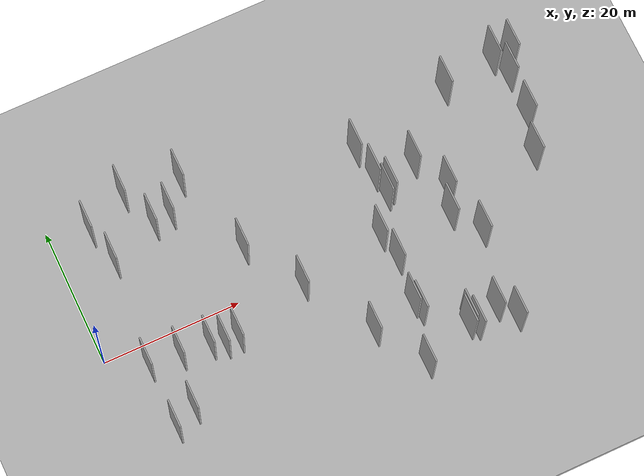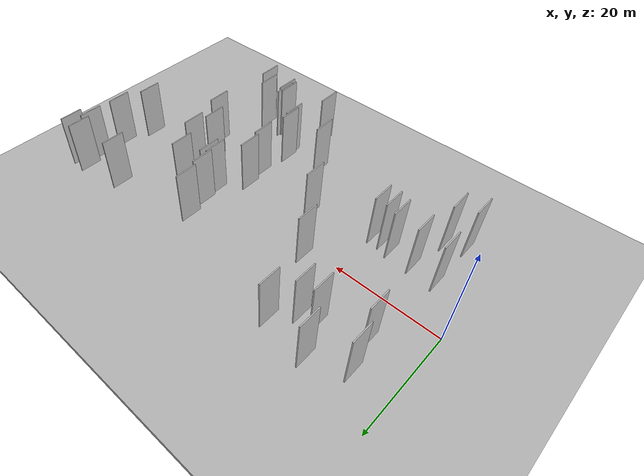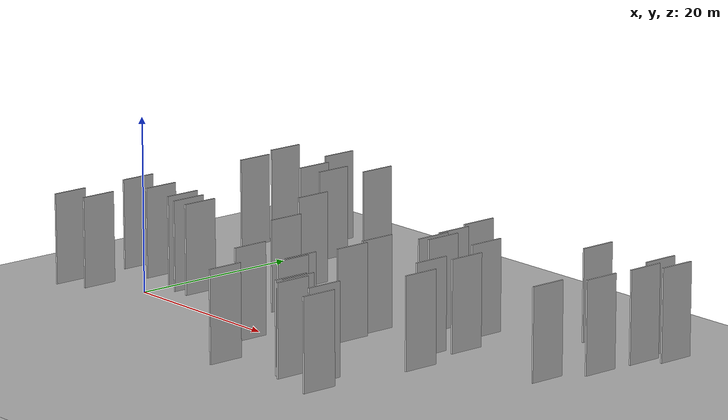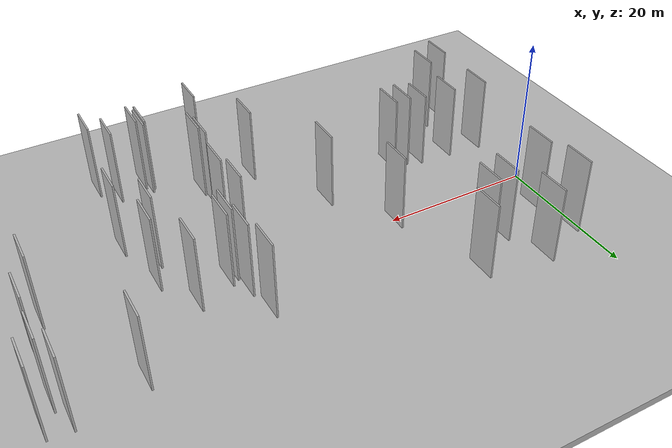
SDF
<?xml version="1.0" encoding="utf-8"?>

<sdf version="1.6">

   <world name="default">

      <gui fullscreen="0">

         <camera name="user_camera">

            <pose>-15 0 4.57585 0 0 0</pose>

            <view_controller>orbit</view_controller>

         </camera>

      </gui>

      <scene>

         <sky>

           <clouds>

             <speed>12</speed>

           </clouds>

         </sky>

         <ambient>0.4 0.4 0.4 1</ambient>

         <background>0.7 0.7 0.7 1</background>

         <shadows>1</shadows>

      </scene>

      <gravity>0 0 -9.8066</gravity>

      <magnetic_field>6e-06 2.3e-05 -4.2e-05</magnetic_field>

      <physics default="0" name="default_physics" type="ode">

         <ode>

            <solver>

               <type>quick</type>

               <iters>10</iters>

               <sor>1.0</sor>

               <use_dynamic_moi_rescaling>0</use_dynamic_moi_rescaling>

            </solver>

            <constraints>

               <cfm>0</cfm>

               <erp>0.2</erp>

               <contact_max_correcting_vel>100</contact_max_correcting_vel>

               <contact_surface_layer>0.001</contact_surface_layer>

            </constraints>

         </ode>

         <max_step_size>0.004</max_step_size>

         <real_time_factor>1</real_time_factor>

         <real_time_update_rate>250</real_time_update_rate>

      </physics>

      <light name="sun" type="directional">

         <cast_shadows>1</cast_shadows>

         <pose>0 0 10 0 0 0</pose>

         <diffuse>0.8 0.8 0.8 1</diffuse>

         <specular>0.2 0.2 0.2 1</specular>

         <attenuation>

            <range>1000</range>

            <constant>0.9</constant>

            <linear>0.01</linear>

            <quadratic>0.001</quadratic>

         </attenuation>

         <direction>-0.5 0.1 -0.9</direction>

      </light>

      <include>

         <name>ground_plane_1</name>

         <uri>model://HANNAS_ground_plane</uri>

         <pose>0 0 0  0 0 0</pose>

      </include>

      <include>

         <name>ground_plane_2</name>

         <uri>model://HANNAS_ground_plane</uri>

         <pose>100 0 0  0 0 0</pose>

      </include>

      <model name="HANNAS_wall_1">

         <static>1</static>

         <pose frame="">28.2181 -2.9749 5.0 0.000000 0.000000 1.570796</pose>

         <link name="link">

            <pose frame="">0 0 5.00 0 0 0</pose>

            <collision name="collision">

               <geometry>

                  <box>

                     <size>4.00 0.2 10.00</size>

                  </box>

               </geometry>

               <max_contacts>10</max_contacts>

               <surface>

                  <contact>

                     <ode/>

                  </contact>

                  <bounce/>

                  <friction>

                     <torsional>

                        <ode/>

                     </torsional>

                     <ode/>

                  </friction>

               </surface>

            </collision>

            <visual name="visual">

               <cast_shadows>0</cast_shadows>

               <geometry>

                  <box>

                     <size>4.00 0.2 10.00</size>

                  </box>

               </geometry>

               <material>

                  <script>

                     <uri>model://HANNAS_wall/materials/scripts</uri>

                     <uri>model://HANNAS_wall/materials/textures</uri>

                     <name>vrc/HANNAS_wall</name>

                  </script>

               </material>

            </visual>

            <self_collide>0</self_collide>

            <enable_wind>0</enable_wind>

            <kinematic>0</kinematic>

         </link>

      </model>

      <model name="HANNAS_wall_2">

         <static>1</static>

         <pose frame="">40.6194 -1.0450 5.0 0.000000 0.000000 1.570796</pose>

         <link name="link">

            <pose frame="">0 0 5.00 0 0 0</pose>

            <collision name="collision">

               <geometry>

                  <box>

                     <size>4.00 0.2 10.00</size>

                  </box>

               </geometry>

               <max_contacts>10</max_contacts>

               <surface>

                  <contact>

                     <ode/>

                  </contact>

                  <bounce/>

                  <friction>

                     <torsional>

                        <ode/>

                     </torsional>

                     <ode/>

                  </friction>

               </surface>

            </collision>

            <visual name="visual">

               <cast_shadows>0</cast_shadows>

               <geometry>

                  <box>

                     <size>4.00 0.2 10.00</size>

                  </box>

               </geometry>

               <material>

                  <script>

                     <uri>model://HANNAS_wall/materials/scripts</uri>

                     <uri>model://HANNAS_wall/materials/textures</uri>

                     <name>vrc/HANNAS_wall</name>

                  </script>

               </material>

            </visual>

            <self_collide>0</self_collide>

            <enable_wind>0</enable_wind>

            <kinematic>0</kinematic>

         </link>

      </model>

      <model name="HANNAS_wall_3">

         <static>1</static>

         <pose frame="">16.1880 13.7043 5.0 0.000000 0.000000 1.570796</pose>

         <link name="link">

            <pose frame="">0 0 5.00 0 0 0</pose>

            <collision name="collision">

               <geometry>

                  <box>

                     <size>4.00 0.2 10.00</size>

                  </box>

               </geometry>

               <max_contacts>10</max_contacts>

               <surface>

                  <contact>

                     <ode/>

                  </contact>

                  <bounce/>

                  <friction>

                     <torsional>

                        <ode/>

                     </torsional>

                     <ode/>

                  </friction>

               </surface>

            </collision>

            <visual name="visual">

               <cast_shadows>0</cast_shadows>

               <geometry>

                  <box>

                     <size>4.00 0.2 10.00</size>

                  </box>

               </geometry>

               <material>

                  <script>

                     <uri>model://HANNAS_wall/materials/scripts</uri>

                     <uri>model://HANNAS_wall/materials/textures</uri>

                     <name>vrc/HANNAS_wall</name>

                  </script>

               </material>

            </visual>

            <self_collide>0</self_collide>

            <enable_wind>0</enable_wind>

            <kinematic>0</kinematic>

         </link>

      </model>

      <model name="HANNAS_wall_4">

         <static>1</static>

         <pose frame="">41.2833 -5.0093 5.0 0.000000 0.000000 1.570796</pose>

         <link name="link">

            <pose frame="">0 0 5.00 0 0 0</pose>

            <collision name="collision">

               <geometry>

                  <box>

                     <size>4.00 0.2 10.00</size>

                  </box>

               </geometry>

               <max_contacts>10</max_contacts>

               <surface>

                  <contact>

                     <ode/>

                  </contact>

                  <bounce/>

                  <friction>

                     <torsional>

                        <ode/>

                     </torsional>

                     <ode/>

                  </friction>

               </surface>

            </collision>

            <visual name="visual">

               <cast_shadows>0</cast_shadows>

               <geometry>

                  <box>

                     <size>4.00 0.2 10.00</size>

                  </box>

               </geometry>

               <material>

                  <script>

                     <uri>model://HANNAS_wall/materials/scripts</uri>

                     <uri>model://HANNAS_wall/materials/textures</uri>

                     <name>vrc/HANNAS_wall</name>

                  </script>

               </material>

            </visual>

            <self_collide>0</self_collide>

            <enable_wind>0</enable_wind>

            <kinematic>0</kinematic>

         </link>

      </model>

      <model name="HANNAS_wall_5">

         <static>1</static>

         <pose frame="">9.4145 -4.8762 5.0 0.000000 0.000000 1.570796</pose>

         <link name="link">

            <pose frame="">0 0 5.00 0 0 0</pose>

            <collision name="collision">

               <geometry>

                  <box>

                     <size>4.00 0.2 10.00</size>

                  </box>

               </geometry>

               <max_contacts>10</max_contacts>

               <surface>

                  <contact>

                     <ode/>

                  </contact>

                  <bounce/>

                  <friction>

                     <torsional>

                        <ode/>

                     </torsional>

                     <ode/>

                  </friction>

               </surface>

            </collision>

            <visual name="visual">

               <cast_shadows>0</cast_shadows>

               <geometry>

                  <box>

                     <size>4.00 0.2 10.00</size>

                  </box>

               </geometry>

               <material>

                  <script>

                     <uri>model://HANNAS_wall/materials/scripts</uri>

                     <uri>model://HANNAS_wall/materials/textures</uri>

                     <name>vrc/HANNAS_wall</name>

                  </script>

               </material>

            </visual>

            <self_collide>0</self_collide>

            <enable_wind>0</enable_wind>

            <kinematic>0</kinematic>

         </link>

      </model>

      <model name="HANNAS_wall_6">

         <static>1</static>

         <pose frame="">8.0954 -12.2919 5.0 0.000000 0.000000 1.570796</pose>

         <link name="link">

            <pose frame="">0 0 5.00 0 0 0</pose>

            <collision name="collision">

               <geometry>

                  <box>

                     <size>4.00 0.2 10.00</size>

                  </box>

               </geometry>

               <max_contacts>10</max_contacts>

               <surface>

                  <contact>

                     <ode/>

                  </contact>

                  <bounce/>

                  <friction>

                     <torsional>

                        <ode/>

                     </torsional>

                     <ode/>

                  </friction>

               </surface>

            </collision>

            <visual name="visual">

               <cast_shadows>0</cast_shadows>

               <geometry>

                  <box>

                     <size>4.00 0.2 10.00</size>

                  </box>

               </geometry>

               <material>

                  <script>

                     <uri>model://HANNAS_wall/materials/scripts</uri>

                     <uri>model://HANNAS_wall/materials/textures</uri>

                     <name>vrc/HANNAS_wall</name>

                  </script>

               </material>

            </visual>

            <self_collide>0</self_collide>

            <enable_wind>0</enable_wind>

            <kinematic>0</kinematic>

         </link>

      </model>

      <model name="HANNAS_wall_7">

         <static>1</static>

         <pose frame="">66.4452 12.3085 5.0 0.000000 0.000000 1.570796</pose>

         <link name="link">

            <pose frame="">0 0 5.00 0 0 0</pose>

            <collision name="collision">

               <geometry>

                  <box>

                     <size>4.00 0.2 10.00</size>

                  </box>

               </geometry>

               <max_contacts>10</max_contacts>

               <surface>

                  <contact>

                     <ode/>

                  </contact>

                  <bounce/>

                  <friction>

                     <torsional>

                        <ode/>

                     </torsional>

                     <ode/>

                  </friction>

               </surface>

            </collision>

            <visual name="visual">

               <cast_shadows>0</cast_shadows>

               <geometry>

                  <box>

                     <size>4.00 0.2 10.00</size>

                  </box>

               </geometry>

               <material>

                  <script>

                     <uri>model://HANNAS_wall/materials/scripts</uri>

                     <uri>model://HANNAS_wall/materials/textures</uri>

                     <name>vrc/HANNAS_wall</name>

                  </script>

               </material>

            </visual>

            <self_collide>0</self_collide>

            <enable_wind>0</enable_wind>

            <kinematic>0</kinematic>

         </link>

      </model>

      <model name="HANNAS_wall_8">

         <static>1</static>

         <pose frame="">11.3391 18.6466 5.0 0.000000 0.000000 1.570796</pose>

         <link name="link">

            <pose frame="">0 0 5.00 0 0 0</pose>

            <collision name="collision">

               <geometry>

                  <box>

                     <size>4.00 0.2 10.00</size>

                  </box>

               </geometry>

               <max_contacts>10</max_contacts>

               <surface>

                  <contact>

                     <ode/>

                  </contact>

                  <bounce/>

                  <friction>

                     <torsional>

                        <ode/>

                     </torsional>

                     <ode/>

                  </friction>

               </surface>

            </collision>

            <visual name="visual">

               <cast_shadows>0</cast_shadows>

               <geometry>

                  <box>

                     <size>4.00 0.2 10.00</size>

                  </box>

               </geometry>

               <material>

                  <script>

                     <uri>model://HANNAS_wall/materials/scripts</uri>

                     <uri>model://HANNAS_wall/materials/textures</uri>

                     <name>vrc/HANNAS_wall</name>

                  </script>

               </material>

            </visual>

            <self_collide>0</self_collide>

            <enable_wind>0</enable_wind>

            <kinematic>0</kinematic>

         </link>

      </model>

      <model name="HANNAS_wall_9">

         <static>1</static>

         <pose frame="">43.4012 7.0641 5.0 0.000000 0.000000 1.570796</pose>

         <link name="link">

            <pose frame="">0 0 5.00 0 0 0</pose>

            <collision name="collision">

               <geometry>

                  <box>

                     <size>4.00 0.2 10.00</size>

                  </box>

               </geometry>

               <max_contacts>10</max_contacts>

               <surface>

                  <contact>

                     <ode/>

                  </contact>

                  <bounce/>

                  <friction>

                     <torsional>

                        <ode/>

                     </torsional>

                     <ode/>

                  </friction>

               </surface>

            </collision>

            <visual name="visual">

               <cast_shadows>0</cast_shadows>

               <geometry>

                  <box>

                     <size>4.00 0.2 10.00</size>

                  </box>

               </geometry>

               <material>

                  <script>

                     <uri>model://HANNAS_wall/materials/scripts</uri>

                     <uri>model://HANNAS_wall/materials/textures</uri>

                     <name>vrc/HANNAS_wall</name>

                  </script>

               </material>

            </visual>

            <self_collide>0</self_collide>

            <enable_wind>0</enable_wind>

            <kinematic>0</kinematic>

         </link>

      </model>

      <model name="HANNAS_wall_10">

         <static>1</static>

         <pose frame="">19.2613 17.3934 5.0 0.000000 0.000000 1.570796</pose>

         <link name="link">

            <pose frame="">0 0 5.00 0 0 0</pose>

            <collision name="collision">

               <geometry>

                  <box>

                     <size>4.00 0.2 10.00</size>

                  </box>

               </geometry>

               <max_contacts>10</max_contacts>

               <surface>

                  <contact>

                     <ode/>

                  </contact>

                  <bounce/>

                  <friction>

                     <torsional>

                        <ode/>

                     </torsional>

                     <ode/>

                  </friction>

               </surface>

            </collision>

            <visual name="visual">

               <cast_shadows>0</cast_shadows>

               <geometry>

                  <box>

                     <size>4.00 0.2 10.00</size>

                  </box>

               </geometry>

               <material>

                  <script>

                     <uri>model://HANNAS_wall/materials/scripts</uri>

                     <uri>model://HANNAS_wall/materials/textures</uri>

                     <name>vrc/HANNAS_wall</name>

                  </script>

               </material>

            </visual>

            <self_collide>0</self_collide>

            <enable_wind>0</enable_wind>

            <kinematic>0</kinematic>

         </link>

      </model>

      <model name="HANNAS_wall_11">

         <static>1</static>

         <pose frame="">38.7203 -19.6491 5.0 0.000000 0.000000 1.570796</pose>

         <link name="link">

            <pose frame="">0 0 5.00 0 0 0</pose>

            <collision name="collision">

               <geometry>

                  <box>

                     <size>4.00 0.2 10.00</size>

                  </box>

               </geometry>

               <max_contacts>10</max_contacts>

               <surface>

                  <contact>

                     <ode/>

                  </contact>

                  <bounce/>

                  <friction>

                     <torsional>

                        <ode/>

                     </torsional>

                     <ode/>

                  </friction>

               </surface>

            </collision>

            <visual name="visual">

               <cast_shadows>0</cast_shadows>

               <geometry>

                  <box>

                     <size>4.00 0.2 10.00</size>

                  </box>

               </geometry>

               <material>

                  <script>

                     <uri>model://HANNAS_wall/materials/scripts</uri>

                     <uri>model://HANNAS_wall/materials/textures</uri>

                     <name>vrc/HANNAS_wall</name>

                  </script>

               </material>

            </visual>

            <self_collide>0</self_collide>

            <enable_wind>0</enable_wind>

            <kinematic>0</kinematic>

         </link>

      </model>

      <model name="HANNAS_wall_12">

         <static>1</static>

         <pose frame="">68.0209 15.2066 5.0 0.000000 0.000000 1.570796</pose>

         <link name="link">

            <pose frame="">0 0 5.00 0 0 0</pose>

            <collision name="collision">

               <geometry>

                  <box>

                     <size>4.00 0.2 10.00</size>

                  </box>

               </geometry>

               <max_contacts>10</max_contacts>

               <surface>

                  <contact>

                     <ode/>

                  </contact>

                  <bounce/>

                  <friction>

                     <torsional>

                        <ode/>

                     </torsional>

                     <ode/>

                  </friction>

               </surface>

            </collision>

            <visual name="visual">

               <cast_shadows>0</cast_shadows>

               <geometry>

                  <box>

                     <size>4.00 0.2 10.00</size>

                  </box>

               </geometry>

               <material>

                  <script>

                     <uri>model://HANNAS_wall/materials/scripts</uri>

                     <uri>model://HANNAS_wall/materials/textures</uri>

                     <name>vrc/HANNAS_wall</name>

                  </script>

               </material>

            </visual>

            <self_collide>0</self_collide>

            <enable_wind>0</enable_wind>

            <kinematic>0</kinematic>

         </link>

      </model>

      <model name="HANNAS_wall_13">

         <static>1</static>

         <pose frame="">46.3713 -16.4307 5.0 0.000000 0.000000 1.570796</pose>

         <link name="link">

            <pose frame="">0 0 5.00 0 0 0</pose>

            <collision name="collision">

               <geometry>

                  <box>

                     <size>4.00 0.2 10.00</size>

                  </box>

               </geometry>

               <max_contacts>10</max_contacts>

               <surface>

                  <contact>

                     <ode/>

                  </contact>

                  <bounce/>

                  <friction>

                     <torsional>

                        <ode/>

                     </torsional>

                     <ode/>

                  </friction>

               </surface>

            </collision>

            <visual name="visual">

               <cast_shadows>0</cast_shadows>

               <geometry>

                  <box>

                     <size>4.00 0.2 10.00</size>

                  </box>

               </geometry>

               <material>

                  <script>

                     <uri>model://HANNAS_wall/materials/scripts</uri>

                     <uri>model://HANNAS_wall/materials/textures</uri>

                     <name>vrc/HANNAS_wall</name>

                  </script>

               </material>

            </visual>

            <self_collide>0</self_collide>

            <enable_wind>0</enable_wind>

            <kinematic>0</kinematic>

         </link>

      </model>

      <model name="HANNAS_wall_14">

         <static>1</static>

         <pose frame="">46.0093 -17.0726 5.0 0.000000 0.000000 1.570796</pose>

         <link name="link">

            <pose frame="">0 0 5.00 0 0 0</pose>

            <collision name="collision">

               <geometry>

                  <box>

                     <size>4.00 0.2 10.00</size>

                  </box>

               </geometry>

               <max_contacts>10</max_contacts>

               <surface>

                  <contact>

                     <ode/>

                  </contact>

                  <bounce/>

                  <friction>

                     <torsional>

                        <ode/>

                     </torsional>

                     <ode/>

                  </friction>

               </surface>

            </collision>

            <visual name="visual">

               <cast_shadows>0</cast_shadows>

               <geometry>

                  <box>

                     <size>4.00 0.2 10.00</size>

                  </box>

               </geometry>

               <material>

                  <script>

                     <uri>model://HANNAS_wall/materials/scripts</uri>

                     <uri>model://HANNAS_wall/materials/textures</uri>

                     <name>vrc/HANNAS_wall</name>

                  </script>

               </material>

            </visual>

            <self_collide>0</self_collide>

            <enable_wind>0</enable_wind>

            <kinematic>0</kinematic>

         </link>

      </model>

      <model name="HANNAS_wall_15">

         <static>1</static>

         <pose frame="">23.0799 5.0115 5.0 0.000000 0.000000 1.570796</pose>

         <link name="link">

            <pose frame="">0 0 5.00 0 0 0</pose>

            <collision name="collision">

               <geometry>

                  <box>

                     <size>4.00 0.2 10.00</size>

                  </box>

               </geometry>

               <max_contacts>10</max_contacts>

               <surface>

                  <contact>

                     <ode/>

                  </contact>

                  <bounce/>

                  <friction>

                     <torsional>

                        <ode/>

                     </torsional>

                     <ode/>

                  </friction>

               </surface>

            </collision>

            <visual name="visual">

               <cast_shadows>0</cast_shadows>

               <geometry>

                  <box>

                     <size>4.00 0.2 10.00</size>

                  </box>

               </geometry>

               <material>

                  <script>

                     <uri>model://HANNAS_wall/materials/scripts</uri>

                     <uri>model://HANNAS_wall/materials/textures</uri>

                     <name>vrc/HANNAS_wall</name>

                  </script>

               </material>

            </visual>

            <self_collide>0</self_collide>

            <enable_wind>0</enable_wind>

            <kinematic>0</kinematic>

         </link>

      </model>

      <model name="HANNAS_wall_16">

         <static>1</static>

         <pose frame="">4.9287 -13.6549 5.0 0.000000 0.000000 1.570796</pose>

         <link name="link">

            <pose frame="">0 0 5.00 0 0 0</pose>

            <collision name="collision">

               <geometry>

                  <box>

                     <size>4.00 0.2 10.00</size>

                  </box>

               </geometry>

               <max_contacts>10</max_contacts>

               <surface>

                  <contact>

                     <ode/>

                  </contact>

                  <bounce/>

                  <friction>

                     <torsional>

                        <ode/>

                     </torsional>

                     <ode/>

                  </friction>

               </surface>

            </collision>

            <visual name="visual">

               <cast_shadows>0</cast_shadows>

               <geometry>

                  <box>

                     <size>4.00 0.2 10.00</size>

                  </box>

               </geometry>

               <material>

                  <script>

                     <uri>model://HANNAS_wall/materials/scripts</uri>

                     <uri>model://HANNAS_wall/materials/textures</uri>

                     <name>vrc/HANNAS_wall</name>

                  </script>

               </material>

            </visual>

            <self_collide>0</self_collide>

            <enable_wind>0</enable_wind>

            <kinematic>0</kinematic>

         </link>

      </model>

      <model name="HANNAS_wall_17">

         <static>1</static>

         <pose frame="">51.8141 1.2907 5.0 0.000000 0.000000 1.570796</pose>

         <link name="link">

            <pose frame="">0 0 5.00 0 0 0</pose>

            <collision name="collision">

               <geometry>

                  <box>

                     <size>4.00 0.2 10.00</size>

                  </box>

               </geometry>

               <max_contacts>10</max_contacts>

               <surface>

                  <contact>

                     <ode/>

                  </contact>

                  <bounce/>

                  <friction>

                     <torsional>

                        <ode/>

                     </torsional>

                     <ode/>

                  </friction>

               </surface>

            </collision>

            <visual name="visual">

               <cast_shadows>0</cast_shadows>

               <geometry>

                  <box>

                     <size>4.00 0.2 10.00</size>

                  </box>

               </geometry>

               <material>

                  <script>

                     <uri>model://HANNAS_wall/materials/scripts</uri>

                     <uri>model://HANNAS_wall/materials/textures</uri>

                     <name>vrc/HANNAS_wall</name>

                  </script>

               </material>

            </visual>

            <self_collide>0</self_collide>

            <enable_wind>0</enable_wind>

            <kinematic>0</kinematic>

         </link>

      </model>

      <model name="HANNAS_wall_18">

         <static>1</static>

         <pose frame="">17.4231 -5.8846 5.0 0.000000 0.000000 1.570796</pose>

         <link name="link">

            <pose frame="">0 0 5.00 0 0 0</pose>

            <collision name="collision">

               <geometry>

                  <box>

                     <size>4.00 0.2 10.00</size>

                  </box>

               </geometry>

               <max_contacts>10</max_contacts>

               <surface>

                  <contact>

                     <ode/>

                  </contact>

                  <bounce/>

                  <friction>

                     <torsional>

                        <ode/>

                     </torsional>

                     <ode/>

                  </friction>

               </surface>

            </collision>

            <visual name="visual">

               <cast_shadows>0</cast_shadows>

               <geometry>

                  <box>

                     <size>4.00 0.2 10.00</size>

                  </box>

               </geometry>

               <material>

                  <script>

                     <uri>model://HANNAS_wall/materials/scripts</uri>

                     <uri>model://HANNAS_wall/materials/textures</uri>

                     <name>vrc/HANNAS_wall</name>

                  </script>

               </material>

            </visual>

            <self_collide>0</self_collide>

            <enable_wind>0</enable_wind>

            <kinematic>0</kinematic>

         </link>

      </model>

      <model name="HANNAS_wall_19">

         <static>1</static>

         <pose frame="">13.6019 -5.1971 5.0 0.000000 0.000000 1.570796</pose>

         <link name="link">

            <pose frame="">0 0 5.00 0 0 0</pose>

            <collision name="collision">

               <geometry>

                  <box>

                     <size>4.00 0.2 10.00</size>

                  </box>

               </geometry>

               <max_contacts>10</max_contacts>

               <surface>

                  <contact>

                     <ode/>

                  </contact>

                  <bounce/>

                  <friction>

                     <torsional>

                        <ode/>

                     </torsional>

                     <ode/>

                  </friction>

               </surface>

            </collision>

            <visual name="visual">

               <cast_shadows>0</cast_shadows>

               <geometry>

                  <box>

                     <size>4.00 0.2 10.00</size>

                  </box>

               </geometry>

               <material>

                  <script>

                     <uri>model://HANNAS_wall/materials/scripts</uri>

                     <uri>model://HANNAS_wall/materials/textures</uri>

                     <name>vrc/HANNAS_wall</name>

                  </script>

               </material>

            </visual>

            <self_collide>0</self_collide>

            <enable_wind>0</enable_wind>

            <kinematic>0</kinematic>

         </link>

      </model>

      <model name="HANNAS_wall_20">

         <static>1</static>

         <pose frame="">52.3853 -18.8001 5.0 0.000000 0.000000 1.570796</pose>

         <link name="link">

            <pose frame="">0 0 5.00 0 0 0</pose>

            <collision name="collision">

               <geometry>

                  <box>

                     <size>4.00 0.2 10.00</size>

                  </box>

               </geometry>

               <max_contacts>10</max_contacts>

               <surface>

                  <contact>

                     <ode/>

                  </contact>

                  <bounce/>

                  <friction>

                     <torsional>

                        <ode/>

                     </torsional>

                     <ode/>

                  </friction>

               </surface>

            </collision>

            <visual name="visual">

               <cast_shadows>0</cast_shadows>

               <geometry>

                  <box>

                     <size>4.00 0.2 10.00</size>

                  </box>

               </geometry>

               <material>

                  <script>

                     <uri>model://HANNAS_wall/materials/scripts</uri>

                     <uri>model://HANNAS_wall/materials/textures</uri>

                     <name>vrc/HANNAS_wall</name>

                  </script>

               </material>

            </visual>

            <self_collide>0</self_collide>

            <enable_wind>0</enable_wind>

            <kinematic>0</kinematic>

         </link>

      </model>

      <model name="HANNAS_wall_21">

         <static>1</static>

         <pose frame="">40.5786 -11.2716 5.0 0.000000 0.000000 1.570796</pose>

         <link name="link">

            <pose frame="">0 0 5.00 0 0 0</pose>

            <collision name="collision">

               <geometry>

                  <box>

                     <size>4.00 0.2 10.00</size>

                  </box>

               </geometry>

               <max_contacts>10</max_contacts>

               <surface>

                  <contact>

                     <ode/>

                  </contact>

                  <bounce/>

                  <friction>

                     <torsional>

                        <ode/>

                     </torsional>

                     <ode/>

                  </friction>

               </surface>

            </collision>

            <visual name="visual">

               <cast_shadows>0</cast_shadows>

               <geometry>

                  <box>

                     <size>4.00 0.2 10.00</size>

                  </box>

               </geometry>

               <material>

                  <script>

                     <uri>model://HANNAS_wall/materials/scripts</uri>

                     <uri>model://HANNAS_wall/materials/textures</uri>

                     <name>vrc/HANNAS_wall</name>

                  </script>

               </material>

            </visual>

            <self_collide>0</self_collide>

            <enable_wind>0</enable_wind>

            <kinematic>0</kinematic>

         </link>

      </model>

      <model name="HANNAS_wall_22">

         <static>1</static>

         <pose frame="">64.5172 0.7226 5.0 0.000000 0.000000 1.570796</pose>

         <link name="link">

            <pose frame="">0 0 5.00 0 0 0</pose>

            <collision name="collision">

               <geometry>

                  <box>

                     <size>4.00 0.2 10.00</size>

                  </box>

               </geometry>

               <max_contacts>10</max_contacts>

               <surface>

                  <contact>

                     <ode/>

                  </contact>

                  <bounce/>

                  <friction>

                     <torsional>

                        <ode/>

                     </torsional>

                     <ode/>

                  </friction>

               </surface>

            </collision>

            <visual name="visual">

               <cast_shadows>0</cast_shadows>

               <geometry>

                  <box>

                     <size>4.00 0.2 10.00</size>

                  </box>

               </geometry>

               <material>

                  <script>

                     <uri>model://HANNAS_wall/materials/scripts</uri>

                     <uri>model://HANNAS_wall/materials/textures</uri>

                     <name>vrc/HANNAS_wall</name>

                  </script>

               </material>

            </visual>

            <self_collide>0</self_collide>

            <enable_wind>0</enable_wind>

            <kinematic>0</kinematic>

         </link>

      </model>

      <model name="HANNAS_wall_23">

         <static>1</static>

         <pose frame="">13.5059 13.2131 5.0 0.000000 0.000000 1.570796</pose>

         <link name="link">

            <pose frame="">0 0 5.00 0 0 0</pose>

            <collision name="collision">

               <geometry>

                  <box>

                     <size>4.00 0.2 10.00</size>

                  </box>

               </geometry>

               <max_contacts>10</max_contacts>

               <surface>

                  <contact>

                     <ode/>

                  </contact>

                  <bounce/>

                  <friction>

                     <torsional>

                        <ode/>

                     </torsional>

                     <ode/>

                  </friction>

               </surface>

            </collision>

            <visual name="visual">

               <cast_shadows>0</cast_shadows>

               <geometry>

                  <box>

                     <size>4.00 0.2 10.00</size>

                  </box>

               </geometry>

               <material>

                  <script>

                     <uri>model://HANNAS_wall/materials/scripts</uri>

                     <uri>model://HANNAS_wall/materials/textures</uri>

                     <name>vrc/HANNAS_wall</name>

                  </script>

               </material>

            </visual>

            <self_collide>0</self_collide>

            <enable_wind>0</enable_wind>

            <kinematic>0</kinematic>

         </link>

      </model>

      <model name="HANNAS_wall_24">

         <static>1</static>

         <pose frame="">53.3478 -6.2530 5.0 0.000000 0.000000 1.570796</pose>

         <link name="link">

            <pose frame="">0 0 5.00 0 0 0</pose>

            <collision name="collision">

               <geometry>

                  <box>

                     <size>4.00 0.2 10.00</size>

                  </box>

               </geometry>

               <max_contacts>10</max_contacts>

               <surface>

                  <contact>

                     <ode/>

                  </contact>

                  <bounce/>

                  <friction>

                     <torsional>

                        <ode/>

                     </torsional>

                     <ode/>

                  </friction>

               </surface>

            </collision>

            <visual name="visual">

               <cast_shadows>0</cast_shadows>

               <geometry>

                  <box>

                     <size>4.00 0.2 10.00</size>

                  </box>

               </geometry>

               <material>

                  <script>

                     <uri>model://HANNAS_wall/materials/scripts</uri>

                     <uri>model://HANNAS_wall/materials/textures</uri>

                     <name>vrc/HANNAS_wall</name>

                  </script>

               </material>

            </visual>

            <self_collide>0</self_collide>

            <enable_wind>0</enable_wind>

            <kinematic>0</kinematic>

         </link>

      </model>

      <model name="HANNAS_wall_25">

         <static>1</static>

         <pose frame="">44.6329 4.4541 5.0 0.000000 0.000000 1.570796</pose>

         <link name="link">

            <pose frame="">0 0 5.00 0 0 0</pose>

            <collision name="collision">

               <geometry>

                  <box>

                     <size>4.00 0.2 10.00</size>

                  </box>

               </geometry>

               <max_contacts>10</max_contacts>

               <surface>

                  <contact>

                     <ode/>

                  </contact>

                  <bounce/>

                  <friction>

                     <torsional>

                        <ode/>

                     </torsional>

                     <ode/>

                  </friction>

               </surface>

            </collision>

            <visual name="visual">

               <cast_shadows>0</cast_shadows>

               <geometry>

                  <box>

                     <size>4.00 0.2 10.00</size>

                  </box>

               </geometry>

               <material>

                  <script>

                     <uri>model://HANNAS_wall/materials/scripts</uri>

                     <uri>model://HANNAS_wall/materials/textures</uri>

                     <name>vrc/HANNAS_wall</name>

                  </script>

               </material>

            </visual>

            <self_collide>0</self_collide>

            <enable_wind>0</enable_wind>

            <kinematic>0</kinematic>

         </link>

      </model>

      <model name="HANNAS_wall_26">

         <static>1</static>

         <pose frame="">43.8026 3.8414 5.0 0.000000 0.000000 1.570796</pose>

         <link name="link">

            <pose frame="">0 0 5.00 0 0 0</pose>

            <collision name="collision">

               <geometry>

                  <box>

                     <size>4.00 0.2 10.00</size>

                  </box>

               </geometry>

               <max_contacts>10</max_contacts>

               <surface>

                  <contact>

                     <ode/>

                  </contact>

                  <bounce/>

                  <friction>

                     <torsional>

                        <ode/>

                     </torsional>

                     <ode/>

                  </friction>

               </surface>

            </collision>

            <visual name="visual">

               <cast_shadows>0</cast_shadows>

               <geometry>

                  <box>

                     <size>4.00 0.2 10.00</size>

                  </box>

               </geometry>

               <material>

                  <script>

                     <uri>model://HANNAS_wall/materials/scripts</uri>

                     <uri>model://HANNAS_wall/materials/textures</uri>

                     <name>vrc/HANNAS_wall</name>

                  </script>

               </material>

            </visual>

            <self_collide>0</self_collide>

            <enable_wind>0</enable_wind>

            <kinematic>0</kinematic>

         </link>

      </model>

      <model name="HANNAS_wall_27">

         <static>1</static>

         <pose frame="">4.9653 -4.5099 5.0 0.000000 0.000000 1.570796</pose>

         <link name="link">

            <pose frame="">0 0 5.00 0 0 0</pose>

            <collision name="collision">

               <geometry>

                  <box>

                     <size>4.00 0.2 10.00</size>

                  </box>

               </geometry>

               <max_contacts>10</max_contacts>

               <surface>

                  <contact>

                     <ode/>

                  </contact>

                  <bounce/>

                  <friction>

                     <torsional>

                        <ode/>

                     </torsional>

                     <ode/>

                  </friction>

               </surface>

            </collision>

            <visual name="visual">

               <cast_shadows>0</cast_shadows>

               <geometry>

                  <box>

                     <size>4.00 0.2 10.00</size>

                  </box>

               </geometry>

               <material>

                  <script>

                     <uri>model://HANNAS_wall/materials/scripts</uri>

                     <uri>model://HANNAS_wall/materials/textures</uri>

                     <name>vrc/HANNAS_wall</name>

                  </script>

               </material>

            </visual>

            <self_collide>0</self_collide>

            <enable_wind>0</enable_wind>

            <kinematic>0</kinematic>

         </link>

      </model>

      <model name="HANNAS_wall_28">

         <static>1</static>

         <pose frame="">66.2391 6.3901 5.0 0.000000 0.000000 1.570796</pose>

         <link name="link">

            <pose frame="">0 0 5.00 0 0 0</pose>

            <collision name="collision">

               <geometry>

                  <box>

                     <size>4.00 0.2 10.00</size>

                  </box>

               </geometry>

               <max_contacts>10</max_contacts>

               <surface>

                  <contact>

                     <ode/>

                  </contact>

                  <bounce/>

                  <friction>

                     <torsional>

                        <ode/>

                     </torsional>

                     <ode/>

                  </friction>

               </surface>

            </collision>

            <visual name="visual">

               <cast_shadows>0</cast_shadows>

               <geometry>

                  <box>

                     <size>4.00 0.2 10.00</size>

                  </box>

               </geometry>

               <material>

                  <script>

                     <uri>model://HANNAS_wall/materials/scripts</uri>

                     <uri>model://HANNAS_wall/materials/textures</uri>

                     <name>vrc/HANNAS_wall</name>

                  </script>

               </material>

            </visual>

            <self_collide>0</self_collide>

            <enable_wind>0</enable_wind>

            <kinematic>0</kinematic>

         </link>

      </model>

      <model name="HANNAS_wall_29">

         <static>1</static>

         <pose frame="">65.3992 15.4369 5.0 0.000000 0.000000 1.570796</pose>

         <link name="link">

            <pose frame="">0 0 5.00 0 0 0</pose>

            <collision name="collision">

               <geometry>

                  <box>

                     <size>4.00 0.2 10.00</size>

                  </box>

               </geometry>

               <max_contacts>10</max_contacts>

               <surface>

                  <contact>

                     <ode/>

                  </contact>

                  <bounce/>

                  <friction>

                     <torsional>

                        <ode/>

                     </torsional>

                     <ode/>

                  </friction>

               </surface>

            </collision>

            <visual name="visual">

               <cast_shadows>0</cast_shadows>

               <geometry>

                  <box>

                     <size>4.00 0.2 10.00</size>

                  </box>

               </geometry>

               <material>

                  <script>

                     <uri>model://HANNAS_wall/materials/scripts</uri>

                     <uri>model://HANNAS_wall/materials/textures</uri>

                     <name>vrc/HANNAS_wall</name>

                  </script>

               </material>

            </visual>

            <self_collide>0</self_collide>

            <enable_wind>0</enable_wind>

            <kinematic>0</kinematic>

         </link>

      </model>

      <model name="HANNAS_wall_30">

         <static>1</static>

         <pose frame="">50.4615 -2.3005 5.0 0.000000 0.000000 1.570796</pose>

         <link name="link">

            <pose frame="">0 0 5.00 0 0 0</pose>

            <collision name="collision">

               <geometry>

                  <box>

                     <size>4.00 0.2 10.00</size>

                  </box>

               </geometry>

               <max_contacts>10</max_contacts>

               <surface>

                  <contact>

                     <ode/>

                  </contact>

                  <bounce/>

                  <friction>

                     <torsional>

                        <ode/>

                     </torsional>

                     <ode/>

                  </friction>

               </surface>

            </collision>

            <visual name="visual">

               <cast_shadows>0</cast_shadows>

               <geometry>

                  <box>

                     <size>4.00 0.2 10.00</size>

                  </box>

               </geometry>

               <material>

                  <script>

                     <uri>model://HANNAS_wall/materials/scripts</uri>

                     <uri>model://HANNAS_wall/materials/textures</uri>

                     <name>vrc/HANNAS_wall</name>

                  </script>

               </material>

            </visual>

            <self_collide>0</self_collide>

            <enable_wind>0</enable_wind>

            <kinematic>0</kinematic>

         </link>

      </model>

      <model name="HANNAS_wall_31">

         <static>1</static>

         <pose frame="">57.5133 14.2103 5.0 0.000000 0.000000 1.570796</pose>

         <link name="link">

            <pose frame="">0 0 5.00 0 0 0</pose>

            <collision name="collision">

               <geometry>

                  <box>

                     <size>4.00 0.2 10.00</size>

                  </box>

               </geometry>

               <max_contacts>10</max_contacts>

               <surface>

                  <contact>

                     <ode/>

                  </contact>

                  <bounce/>

                  <friction>

                     <torsional>

                        <ode/>

                     </torsional>

                     <ode/>

                  </friction>

               </surface>

            </collision>

            <visual name="visual">

               <cast_shadows>0</cast_shadows>

               <geometry>

                  <box>

                     <size>4.00 0.2 10.00</size>

                  </box>

               </geometry>

               <material>

                  <script>

                     <uri>model://HANNAS_wall/materials/scripts</uri>

                     <uri>model://HANNAS_wall/materials/textures</uri>

                     <name>vrc/HANNAS_wall</name>

                  </script>

               </material>

            </visual>

            <self_collide>0</self_collide>

            <enable_wind>0</enable_wind>

            <kinematic>0</kinematic>

         </link>

      </model>

      <model name="HANNAS_wall_32">

         <static>1</static>

         <pose frame="">15.4614 -5.8716 5.0 0.000000 0.000000 1.570796</pose>

         <link name="link">

            <pose frame="">0 0 5.00 0 0 0</pose>

            <collision name="collision">

               <geometry>

                  <box>

                     <size>4.00 0.2 10.00</size>

                  </box>

               </geometry>

               <max_contacts>10</max_contacts>

               <surface>

                  <contact>

                     <ode/>

                  </contact>

                  <bounce/>

                  <friction>

                     <torsional>

                        <ode/>

                     </torsional>

                     <ode/>

                  </friction>

               </surface>

            </collision>

            <visual name="visual">

               <cast_shadows>0</cast_shadows>

               <geometry>

                  <box>

                     <size>4.00 0.2 10.00</size>

                  </box>

               </geometry>

               <material>

                  <script>

                     <uri>model://HANNAS_wall/materials/scripts</uri>

                     <uri>model://HANNAS_wall/materials/textures</uri>

                     <name>vrc/HANNAS_wall</name>

                  </script>

               </material>

            </visual>

            <self_collide>0</self_collide>

            <enable_wind>0</enable_wind>

            <kinematic>0</kinematic>

         </link>

      </model>

      <model name="HANNAS_wall_33">

         <static>1</static>

         <pose frame="">40.9294 -12.6075 5.0 0.000000 0.000000 1.570796</pose>

         <link name="link">

            <pose frame="">0 0 5.00 0 0 0</pose>

            <collision name="collision">

               <geometry>

                  <box>

                     <size>4.00 0.2 10.00</size>

                  </box>

               </geometry>

               <max_contacts>10</max_contacts>

               <surface>

                  <contact>

                     <ode/>

                  </contact>

                  <bounce/>

                  <friction>

                     <torsional>

                        <ode/>

                     </torsional>

                     <ode/>

                  </friction>

               </surface>

            </collision>

            <visual name="visual">

               <cast_shadows>0</cast_shadows>

               <geometry>

                  <box>

                     <size>4.00 0.2 10.00</size>

                  </box>

               </geometry>

               <material>

                  <script>

                     <uri>model://HANNAS_wall/materials/scripts</uri>

                     <uri>model://HANNAS_wall/materials/textures</uri>

                     <name>vrc/HANNAS_wall</name>

                  </script>

               </material>

            </visual>

            <self_collide>0</self_collide>

            <enable_wind>0</enable_wind>

            <kinematic>0</kinematic>

         </link>

      </model>

      <model name="HANNAS_wall_34">

         <static>1</static>

         <pose frame="">34.1948 -12.6691 5.0 0.000000 0.000000 1.570796</pose>

         <link name="link">

            <pose frame="">0 0 5.00 0 0 0</pose>

            <collision name="collision">

               <geometry>

                  <box>

                     <size>4.00 0.2 10.00</size>

                  </box>

               </geometry>

               <max_contacts>10</max_contacts>

               <surface>

                  <contact>

                     <ode/>

                  </contact>

                  <bounce/>

                  <friction>

                     <torsional>

                        <ode/>

                     </torsional>

                     <ode/>

                  </friction>

               </surface>

            </collision>

            <visual name="visual">

               <cast_shadows>0</cast_shadows>

               <geometry>

                  <box>

                     <size>4.00 0.2 10.00</size>

                  </box>

               </geometry>

               <material>

                  <script>

                     <uri>model://HANNAS_wall/materials/scripts</uri>

                     <uri>model://HANNAS_wall/materials/textures</uri>

                     <name>vrc/HANNAS_wall</name>

                  </script>

               </material>

            </visual>

            <self_collide>0</self_collide>

            <enable_wind>0</enable_wind>

            <kinematic>0</kinematic>

         </link>

      </model>

      <model name="HANNAS_wall_35">

         <static>1</static>

         <pose frame="">42.6252 11.2399 5.0 0.000000 0.000000 1.570796</pose>

         <link name="link">

            <pose frame="">0 0 5.00 0 0 0</pose>

            <collision name="collision">

               <geometry>

                  <box>

                     <size>4.00 0.2 10.00</size>

                  </box>

               </geometry>

               <max_contacts>10</max_contacts>

               <surface>

                  <contact>

                     <ode/>

                  </contact>

                  <bounce/>

                  <friction>

                     <torsional>

                        <ode/>

                     </torsional>

                     <ode/>

                  </friction>

               </surface>

            </collision>

            <visual name="visual">

               <cast_shadows>0</cast_shadows>

               <geometry>

                  <box>

                     <size>4.00 0.2 10.00</size>

                  </box>

               </geometry>

               <material>

                  <script>

                     <uri>model://HANNAS_wall/materials/scripts</uri>

                     <uri>model://HANNAS_wall/materials/textures</uri>

                     <name>vrc/HANNAS_wall</name>

                  </script>

               </material>

            </visual>

            <self_collide>0</self_collide>

            <enable_wind>0</enable_wind>

            <kinematic>0</kinematic>

         </link>

      </model>

      <model name="HANNAS_wall_36">

         <static>1</static>

         <pose frame="">46.9165 -17.5981 5.0 0.000000 0.000000 1.570796</pose>

         <link name="link">

            <pose frame="">0 0 5.00 0 0 0</pose>

            <collision name="collision">

               <geometry>

                  <box>

                     <size>4.00 0.2 10.00</size>

                  </box>

               </geometry>

               <max_contacts>10</max_contacts>

               <surface>

                  <contact>

                     <ode/>

                  </contact>

                  <bounce/>

                  <friction>

                     <torsional>

                        <ode/>

                     </torsional>

                     <ode/>

                  </friction>

               </surface>

            </collision>

            <visual name="visual">

               <cast_shadows>0</cast_shadows>

               <geometry>

                  <box>

                     <size>4.00 0.2 10.00</size>

                  </box>

               </geometry>

               <material>

                  <script>

                     <uri>model://HANNAS_wall/materials/scripts</uri>

                     <uri>model://HANNAS_wall/materials/textures</uri>

                     <name>vrc/HANNAS_wall</name>

                  </script>

               </material>

            </visual>

            <self_collide>0</self_collide>

            <enable_wind>0</enable_wind>

            <kinematic>0</kinematic>

         </link>

      </model>

      <model name="HANNAS_wall_37">

         <static>1</static>

         <pose frame="">49.0595 6.4742 5.0 0.000000 0.000000 1.570796</pose>

         <link name="link">

            <pose frame="">0 0 5.00 0 0 0</pose>

            <collision name="collision">

               <geometry>

                  <box>

                     <size>4.00 0.2 10.00</size>

                  </box>

               </geometry>

               <max_contacts>10</max_contacts>

               <surface>

                  <contact>

                     <ode/>

                  </contact>

                  <bounce/>

                  <friction>

                     <torsional>

                        <ode/>

                     </torsional>

                     <ode/>

                  </friction>

               </surface>

            </collision>

            <visual name="visual">

               <cast_shadows>0</cast_shadows>

               <geometry>

                  <box>

                     <size>4.00 0.2 10.00</size>

                  </box>

               </geometry>

               <material>

                  <script>

                     <uri>model://HANNAS_wall/materials/scripts</uri>

                     <uri>model://HANNAS_wall/materials/textures</uri>

                     <name>vrc/HANNAS_wall</name>

                  </script>

               </material>

            </visual>

            <self_collide>0</self_collide>

            <enable_wind>0</enable_wind>

            <kinematic>0</kinematic>

         </link>

      </model>

      <model name="HANNAS_wall_38">

         <static>1</static>

         <pose frame="">6.5698 10.5329 5.0 0.000000 0.000000 1.570796</pose>

         <link name="link">

            <pose frame="">0 0 5.00 0 0 0</pose>

            <collision name="collision">

               <geometry>

                  <box>

                     <size>4.00 0.2 10.00</size>

                  </box>

               </geometry>

               <max_contacts>10</max_contacts>

               <surface>

                  <contact>

                     <ode/>

                  </contact>

                  <bounce/>

                  <friction>

                     <torsional>

                        <ode/>

                     </torsional>

                     <ode/>

                  </friction>

               </surface>

            </collision>

            <visual name="visual">

               <cast_shadows>0</cast_shadows>

               <geometry>

                  <box>

                     <size>4.00 0.2 10.00</size>

                  </box>

               </geometry>

               <material>

                  <script>

                     <uri>model://HANNAS_wall/materials/scripts</uri>

                     <uri>model://HANNAS_wall/materials/textures</uri>

                     <name>vrc/HANNAS_wall</name>

                  </script>

               </material>

            </visual>

            <self_collide>0</self_collide>

            <enable_wind>0</enable_wind>

            <kinematic>0</kinematic>

         </link>

      </model>

      <model name="HANNAS_wall_39">

         <static>1</static>

         <pose frame="">5.3216 15.9096 5.0 0.000000 0.000000 1.570796</pose>

         <link name="link">

            <pose frame="">0 0 5.00 0 0 0</pose>

            <collision name="collision">

               <geometry>

                  <box>

                     <size>4.00 0.2 10.00</size>

                  </box>

               </geometry>

               <max_contacts>10</max_contacts>

               <surface>

                  <contact>

                     <ode/>

                  </contact>

                  <bounce/>

                  <friction>

                     <torsional>

                        <ode/>

                     </torsional>

                     <ode/>

                  </friction>

               </surface>

            </collision>

            <visual name="visual">

               <cast_shadows>0</cast_shadows>

               <geometry>

                  <box>

                     <size>4.00 0.2 10.00</size>

                  </box>

               </geometry>

               <material>

                  <script>

                     <uri>model://HANNAS_wall/materials/scripts</uri>

                     <uri>model://HANNAS_wall/materials/textures</uri>

                     <name>vrc/HANNAS_wall</name>

                  </script>

               </material>

            </visual>

            <self_collide>0</self_collide>

            <enable_wind>0</enable_wind>

            <kinematic>0</kinematic>

         </link>

      </model>

      <model name="HANNAS_wall_40">

         <static>1</static>

         <pose frame="">50.3847 -16.4215 5.0 0.000000 0.000000 1.570796</pose>

         <link name="link">

            <pose frame="">0 0 5.00 0 0 0</pose>

            <collision name="collision">

               <geometry>

                  <box>

                     <size>4.00 0.2 10.00</size>

                  </box>

               </geometry>

               <max_contacts>10</max_contacts>

               <surface>

                  <contact>

                     <ode/>

                  </contact>

                  <bounce/>

                  <friction>

                     <torsional>

                        <ode/>

                     </torsional>

                     <ode/>

                  </friction>

               </surface>

            </collision>

            <visual name="visual">

               <cast_shadows>0</cast_shadows>

               <geometry>

                  <box>

                     <size>4.00 0.2 10.00</size>

                  </box>

               </geometry>

               <material>

                  <script>

                     <uri>model://HANNAS_wall/materials/scripts</uri>

                     <uri>model://HANNAS_wall/materials/textures</uri>

                     <name>vrc/HANNAS_wall</name>

                  </script>

               </material>

            </visual>

            <self_collide>0</self_collide>

            <enable_wind>0</enable_wind>

            <kinematic>0</kinematic>

         </link>

      </model>

   </world>

</sdf>
